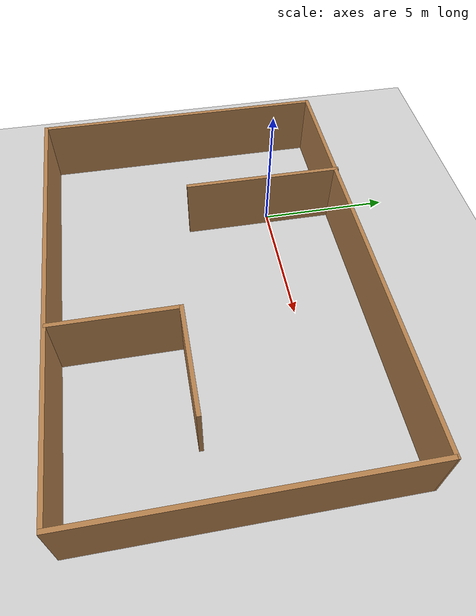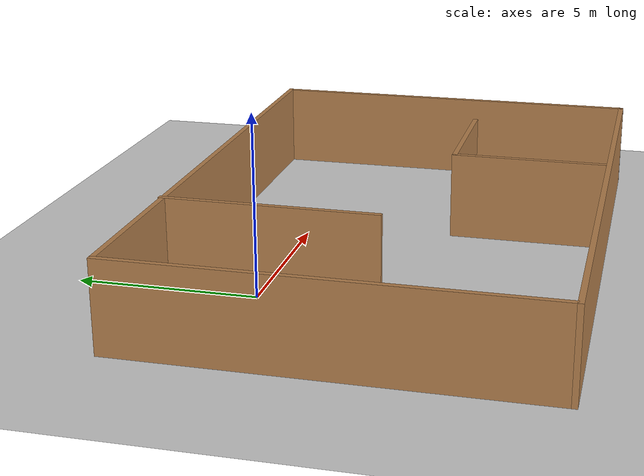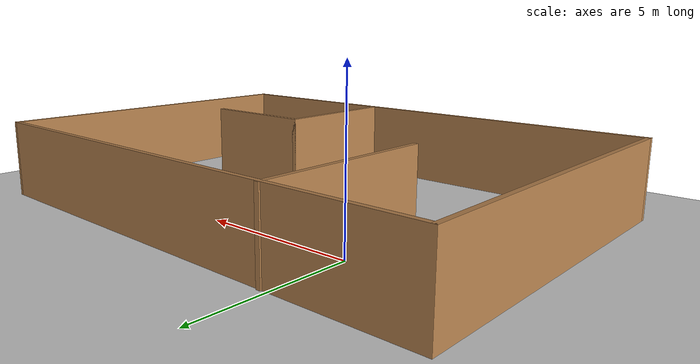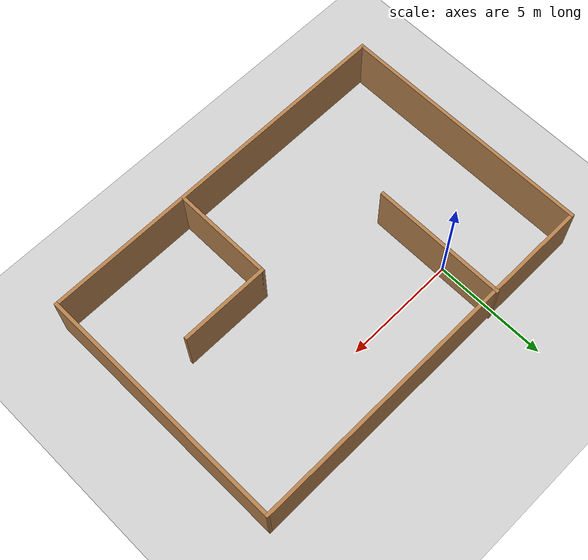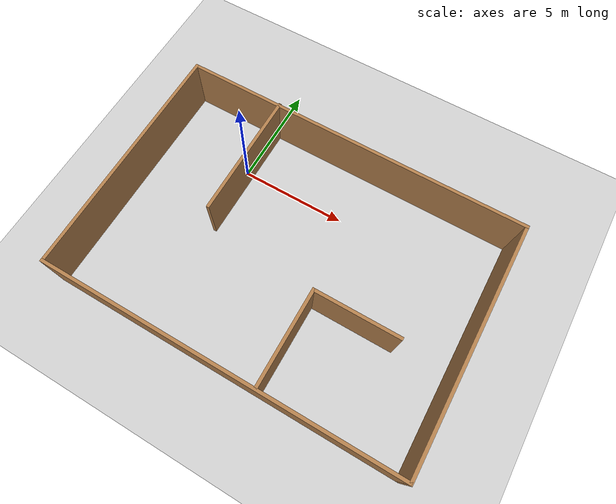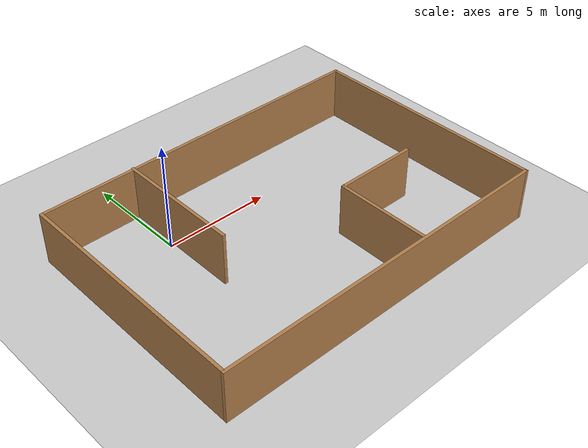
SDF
<sdf version="1.7">
 <world name="default">
  <light name="sun" type="directional">
   <pose>0 0 10 0 -0 0</pose>
   <diffuse>0.8 0.8 0.8 1</diffuse>
   <specular>0.2 0.2 0.2 1</specular>
   <attenuation>
    <range>1000</range>
    <constant>0.9</constant>
    <linear>0.01</linear>
    <quadratic>0.001</quadratic>
   </attenuation>
   <direction>-0.5 0.1 -0.9</direction>
   <spot><inner_angle>0</inner_angle><outer_angle>0</outer_angle><falloff>0</falloff></spot>
  </light>
  <model name="ground_plane">
   <static>1</static>
   <link name="link">
    <collision name="collision">
     <geometry><plane><normal>0 0 1</normal><size>100 100</size></plane></geometry>
     <surface><friction><ode><mu>100</mu><mu2>50</mu2></ode></friction></surface>
    </collision>
    <visual name="visual">
     <cast_shadows>0</cast_shadows>
     <geometry><plane><normal>0 0 1</normal><size>100 100</size></plane></geometry>
     <material>
      <script><uri>file://media/materials/scripts/gazebo.material</uri><name>Gazebo/Grey</name></script>
     </material>
    </visual>
   </link>
  </model>
  <gravity>0 0 -9.8</gravity>
  <magnetic_field>6e-06 2.3e-05 -4.2e-05</magnetic_field>
  <atmosphere type="adiabatic"/>
  <physics type="ode">
   <max_step_size>0.001</max_step_size>
   <real_time_factor>1</real_time_factor>
   <real_time_update_rate>1000</real_time_update_rate>
  </physics>
  <scene><ambient>0.4 0.4 0.4 1</ambient><background>0.7 0.7 0.7 1</background><shadows>1</shadows></scene>
  <spherical_coordinates>
   <surface_model>EARTH_WGS84</surface_model>
   <latitude_deg>0</latitude_deg>
   <longitude_deg>0</longitude_deg>
   <elevation>0</elevation>
   <heading_deg>0</heading_deg>
  </spherical_coordinates>
  <model name="simple_maze">
   <pose>4 -3 0 0 -0 0</pose>
   <link name="Wall_0">
    <collision name="Wall_0_Collision">
     <geometry><box><size>11.25 0.15 2.5</size></box></geometry>
     <pose>0 0 1.25 0 -0 0</pose>
    </collision>
    <visual name="Wall_0_Visual">
     <pose>0 0 1.25 0 -0 0</pose>
     <geometry><box><size>11.25 0.15 2.5</size></box></geometry>
     <material>
      <script><uri>file://media/materials/scripts/gazebo.material</uri><name>Gazebo/Wood</name></script>
      <ambient>1 1 1 1</ambient>
     </material>
     <meta><layer>0</layer></meta>
    </visual>
    <pose>-8.19842 0.033656 0 0 -0 1.5708</pose>
   </link>
   <link name="Wall_1">
    <collision name="Wall_1_Collision">
     <geometry><box><size>16.5 0.15 2.5</size></box></geometry>
     <pose>0 0 1.25 0 -0 0</pose>
    </collision>
    <visual name="Wall_1_Visual">
     <pose>0 0 1.25 0 -0 0</pose>
     <geometry><box><size>16.5 0.15 2.5</size></box></geometry>
     <material>
      <script><uri>file://media/materials/scripts/gazebo.material</uri><name>Gazebo/Wood</name></script>
      <ambient>1 1 1 1</ambient>
     </material>
     <meta><layer>0</layer></meta>
    </visual>
    <pose>-0.023417 5.58366 0 0 -0 0</pose>
   </link>
   <link name="Wall_10">
    <collision name="Wall_10_Collision">
     <geometry><box><size>6 0.15 2.5</size></box></geometry>
     <pose>0 0 1.25 0 -0 0</pose>
    </collision>
    <visual name="Wall_10_Visual">
     <pose>0 0 1.25 0 -0 0</pose>
     <geometry><box><size>6 0.15 2.5</size></box></geometry>
     <material>
      <script><uri>file://media/materials/scripts/gazebo.material</uri><name>Gazebo/Wood</name></script>
      <ambient>1 1 1 1</ambient>
     </material>
     <meta><layer>0</layer></meta>
    </visual>
    <pose>-3.75172 2.70328 0 0 -0 -1.5708</pose>
   </link>
   <link name="Wall_12">
    <collision name="Wall_12_Collision">
     <geometry><box><size>4.5 0.15 2.5</size></box></geometry>
     <pose>0 0 1.25 0 -0 0</pose>
    </collision>
    <visual name="Wall_12_Visual">
     <pose>0 0 1.25 0 -0 0</pose>
     <geometry><box><size>4.5 0.15 2.5</size></box></geometry>
     <material>
      <script><uri>file://media/materials/scripts/gazebo.material</uri><name>Gazebo/Wood</name></script>
      <ambient>1 1 1 1</ambient>
     </material>
     <meta><layer>0</layer></meta>
    </visual>
    <pose>1.84167 -3.3839 0 0 -0 1.5708</pose>
   </link>
   <link name="Wall_13">
    <collision name="Wall_13_Collision">
     <geometry><box><size>4 0.15 2.5</size></box></geometry>
     <pose>0 0 1.25 0 -0 0</pose>
    </collision>
    <visual name="Wall_13_Visual">
     <pose>0 0 1.25 0 -0 0</pose>
     <geometry><box><size>4 0.15 2.5</size></box></geometry>
     <material>
      <script><uri>file://media/materials/scripts/gazebo.material</uri><name>Gazebo/Wood</name></script>
      <ambient>1 1 1 1</ambient>
     </material>
     <meta><layer>0</layer></meta>
    </visual>
    <pose>3.76667 -1.2089 0 0 -0 0</pose>
   </link>
   <link name="Wall_2">
    <collision name="Wall_2_Collision">
     <geometry><box><size>11.3619 0.15 2.5</size></box></geometry>
     <pose>0 0 1.25 0 -0 0</pose>
    </collision>
    <visual name="Wall_2_Visual">
     <pose>0 0 1.25 0 -0 0</pose>
     <geometry><box><size>11.3619 0.15 2.5</size></box></geometry>
     <material>
      <script><uri>file://media/materials/scripts/gazebo.material</uri><name>Gazebo/Wood</name></script>
      <ambient>1 1 1 1</ambient>
     </material>
     <meta><layer>0</layer></meta>
    </visual>
    <pose>8.17484 -0.022086 0 0 -0 -1.56665</pose>
   </link>
   <link name="Wall_3">
    <collision name="Wall_3_Collision">
     <geometry><box><size>16.5 0.15 2.5</size></box></geometry>
     <pose>0 0 1.25 0 -0 0</pose>
    </collision>
    <visual name="Wall_3_Visual">
     <pose>0 0 1.25 0 -0 0</pose>
     <geometry><box><size>16.5 0.15 2.5</size></box></geometry>
     <material>
      <script><uri>file://media/materials/scripts/gazebo.material</uri><name>Gazebo/Wood</name></script>
      <ambient>1 1 1 1</ambient>
     </material>
     <meta><layer>0</layer></meta>
    </visual>
    <pose>-0.023417 -5.62783 0 0 -0 3.14159</pose>
   </link>
   <static>1</static>
  </model>
 </world>
</sdf>
